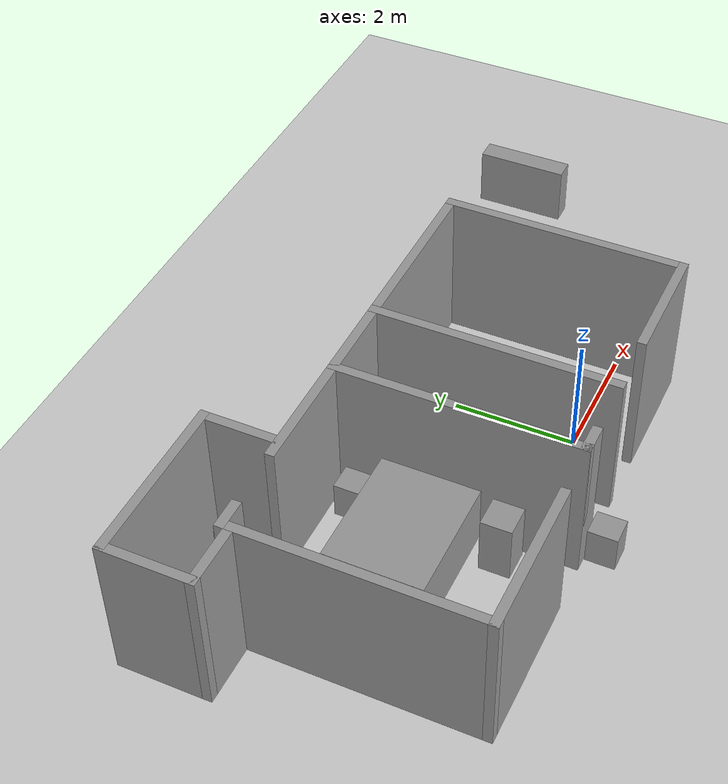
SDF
<sdf version="1.9">
 <world name="default">
  <model name="ground_plane">
   <static>true</static>
   <link name="link">
    <collision name="collision">
     <geometry><plane><normal>0 0 1</normal><size>100 100</size></plane></geometry>
     <surface><friction><ode><mu>100</mu><mu2>50</mu2></ode></friction></surface>
    </collision>
    <visual name="visual">
     <cast_shadows>false</cast_shadows>
     <geometry><plane><normal>0 0 1</normal><size>100 100</size></plane></geometry>
     <material>
      <script><uri>file://media/materials/scripts/gazebo.material</uri><name>Gazebo/Grey</name></script>
     </material>
    </visual>
   </link>
  </model>
  <model name="cma_escritorio">
   <pose>-1.8304 1.03024 0 0 0 0</pose>
   <link name="Wall_11">
    <collision name="Wall_11_Collision">
     <geometry><box><size>2 0.14999999999999999 2.5</size></box></geometry>
     <pose>0 0 1.25 0 0 0</pose>
    </collision>
    <visual name="Wall_11_Visual">
     <pose>0 0 1.25 0 0 0</pose>
     <geometry><box><size>2 0.14999999999999999 2.5</size></box></geometry>
     <material>
      <script><uri>file://media/materials/scripts/gazebo.material</uri><name>Gazebo/Grey</name></script>
      <ambient>1 1 1 1</ambient>
     </material>
    </visual>
    <pose>-1.3999999999999999 1.9299999999999999 0 0 0 3.1415899999999999</pose>
   </link>
   <link name="Wall_2">
    <collision name="Wall_2_Collision">
     <geometry><box><size>4 0.14999999999999999 2.5</size></box></geometry>
     <pose>0 0 1.25 0 0 0</pose>
    </collision>
    <visual name="Wall_2_Visual">
     <pose>0 0 1.25 0 0 0</pose>
     <geometry><box><size>4 0.14999999999999999 2.5</size></box></geometry>
     <material>
      <script><uri>file://media/materials/scripts/gazebo.material</uri><name>Gazebo/Grey</name></script>
      <ambient>1 1 1 1</ambient>
     </material>
    </visual>
    <pose>0.875 0.0050000000000000001 0 0 0 1.5708</pose>
   </link>
   <link name="Wall_25">
    <collision name="Wall_25_Collision">
     <geometry><box><size>2.5 0.14999999999999999 2.5</size></box></geometry>
     <pose>0 0 1.25 0 0 0</pose>
    </collision>
    <visual name="Wall_25_Visual">
     <pose>0 0 1.25 0 0 0</pose>
     <geometry><box><size>2.5 0.14999999999999999 2.5</size></box></geometry>
     <material>
      <script><uri>file://media/materials/scripts/gazebo.material</uri><name>Gazebo/Grey</name></script>
      <ambient>1 1 1 1</ambient>
     </material>
    </visual>
    <pose>-2.5499999999999998 -1.9299999999999999 0 0 0 3.1415899999999999</pose>
   </link>
   <link name="Wall_26">
    <collision name="Wall_26_Collision">
     <geometry><box><size>4 0.14999999999999999 2.5</size></box></geometry>
     <pose>0 0 1.25 0 0 0</pose>
    </collision>
    <visual name="Wall_26_Visual">
     <pose>0 0 1.25 0 0 0</pose>
     <geometry><box><size>4 0.14999999999999999 2.5</size></box></geometry>
     <material>
      <script><uri>file://media/materials/scripts/gazebo.material</uri><name>Gazebo/Grey</name></script>
      <ambient>1 1 1 1</ambient>
     </material>
    </visual>
    <pose>-3.7250000000000001 -0.0050000000000000001 0 0 0 1.5708</pose>
   </link>
   <link name="Wall_27">
    <collision name="Wall_27_Collision">
     <geometry><box><size>0.5 0.14999999999999999 2.5</size></box></geometry>
     <pose>0 0 1.25 0 0 0</pose>
    </collision>
    <visual name="Wall_27_Visual">
     <pose>0 0 1.25 0 0 0</pose>
     <geometry><box><size>0.5 0.14999999999999999 2.5</size></box></geometry>
     <material>
      <script><uri>file://media/materials/scripts/gazebo.material</uri><name>Gazebo/Grey</name></script>
      <ambient>1 1 1 1</ambient>
     </material>
    </visual>
    <pose>-3.5499999999999998 1.9199999999999999 0 0 0 0</pose>
   </link>
   <link name="Wall_3">
    <collision name="Wall_3_Collision">
     <geometry><box><size>3 0.14999999999999999 2.5</size></box></geometry>
     <pose>0 0 1.25 0 0 0</pose>
    </collision>
    <visual name="Wall_3_Visual">
     <pose>0 0 1.25 0 0 0</pose>
     <geometry><box><size>3 0.14999999999999999 2.5</size></box></geometry>
     <material>
      <script><uri>file://media/materials/scripts/gazebo.material</uri><name>Gazebo/Grey</name></script>
      <ambient>1 1 1 1</ambient>
     </material>
    </visual>
    <pose>2.2999999999999998 1.9299999999999999 0 0 0 0</pose>
   </link>
   <link name="Wall_4">
    <collision name="Wall_4_Collision">
     <geometry><box><size>4 0.14999999999999999 2.5</size></box></geometry>
     <pose>0 0 1.25 0 0 0</pose>
    </collision>
    <visual name="Wall_4_Visual">
     <pose>0 0 1.25 0 0 0</pose>
     <geometry><box><size>4 0.14999999999999999 2.5</size></box></geometry>
     <material>
      <script><uri>file://media/materials/scripts/gazebo.material</uri><name>Gazebo/Grey</name></script>
      <ambient>1 1 1 1</ambient>
     </material>
    </visual>
    <pose>3.7250000000000001 0.0050000000000000001 0 0 0 -1.5708</pose>
   </link>
   <link name="Wall_5">
    <collision name="Wall_5_Collision">
     <geometry><box><size>2 0.14999999999999999 2.5</size></box></geometry>
     <pose>0 0 1.25 0 0 0</pose>
    </collision>
    <visual name="Wall_5_Visual">
     <pose>0 0 1.25 0 0 0</pose>
     <geometry><box><size>2 0.14999999999999999 2.5</size></box></geometry>
     <material>
      <script><uri>file://media/materials/scripts/gazebo.material</uri><name>Gazebo/Grey</name></script>
      <ambient>1 1 1 1</ambient>
     </material>
    </visual>
    <pose>2.7999999999999998 -1.9199999999999999 0 0 0 3.1415899999999999</pose>
   </link>
   <link name="Wall_7">
    <collision name="Wall_7_Collision">
     <geometry><box><size>1.5 0.14999999999999999 2.5</size></box></geometry>
     <pose>0 0 1.25 0 0 0</pose>
    </collision>
    <visual name="Wall_7_Visual">
     <pose>0 0 1.25 0 0 0</pose>
     <geometry><box><size>1.5 0.14999999999999999 2.5</size></box></geometry>
     <material>
      <script><uri>file://media/materials/scripts/gazebo.material</uri><name>Gazebo/Grey</name></script>
      <ambient>1 1 1 1</ambient>
     </material>
    </visual>
    <pose>0.20000000000000001 1.9299999999999999 0 0 0 3.1415899999999999</pose>
   </link>
   <link name="Wall_8">
    <collision name="Wall_8_Collision">
     <geometry><box><size>4 0.14999999999999999 2.5</size></box></geometry>
     <pose>0 0 1.25 0 0 0</pose>
    </collision>
    <visual name="Wall_8_Visual">
     <pose>0 0 1.25 0 0 0</pose>
     <geometry><box><size>4 0.14999999999999999 2.5</size></box></geometry>
     <material>
      <script><uri>file://media/materials/scripts/gazebo.material</uri><name>Gazebo/Grey</name></script>
      <ambient>1 1 1 1</ambient>
     </material>
    </visual>
    <pose>-0.47499999999999998 0.0050000000000000001 0 0 0 -1.5708</pose>
   </link>
   <link name="Wall_9">
    <collision name="Wall_9_Collision">
     <geometry><box><size>0.5 0.14999999999999999 2.5</size></box></geometry>
     <pose>0 0 1.25 0 0 0</pose>
    </collision>
    <visual name="Wall_9_Visual">
     <pose>0 0 1.25 0 0 0</pose>
     <geometry><box><size>0.5 0.14999999999999999 2.5</size></box></geometry>
     <material>
      <script><uri>file://media/materials/scripts/gazebo.material</uri><name>Gazebo/Grey</name></script>
      <ambient>1 1 1 1</ambient>
     </material>
    </visual>
    <pose>-0.29999999999999999 -1.9199999999999999 0 0 0 0</pose>
   </link>
   <static>true</static>
  </model>
  <model name="cma_banheiro">
   <pose>-5.2292800000000002 3.4870999999999999 0 0 0 0</pose>
   <link name="Wall_0">
    <collision name="Wall_0_Collision">
     <geometry><box><size>1 0.14999999999999999 2.5</size></box></geometry>
     <pose>0 0 1.25 0 0 0</pose>
    </collision>
    <visual name="Wall_0_Visual">
     <pose>0 0 1.25 0 0 0</pose>
     <geometry><box><size>1 0.14999999999999999 2.5</size></box></geometry>
     <material>
      <script><uri>file://media/materials/scripts/gazebo.material</uri><name>Gazebo/Grey</name></script>
      <ambient>1 1 1 1</ambient>
     </material>
    </visual>
    <pose>-0.875 -0.67500000000000004 0 0 0 3.1415899999999999</pose>
   </link>
   <link name="Wall_1">
    <collision name="Wall_1_Collision">
     <geometry><box><size>1.5 0.14999999999999999 2.5</size></box></geometry>
     <pose>0 0 1.25 0 0 0</pose>
    </collision>
    <visual name="Wall_1_Visual">
     <pose>0 0 1.25 0 0 0</pose>
     <geometry><box><size>1.5 0.14999999999999999 2.5</size></box></geometry>
     <material>
      <script><uri>file://media/materials/scripts/gazebo.material</uri><name>Gazebo/Grey</name></script>
      <ambient>1 1 1 1</ambient>
     </material>
    </visual>
    <pose>-1.3 0 0 0 0 1.5708</pose>
   </link>
   <link name="Wall_2">
    <collision name="Wall_2_Collision">
     <geometry><box><size>2.75 0.14999999999999999 2.5</size></box></geometry>
     <pose>0 0 1.25 0 0 0</pose>
    </collision>
    <visual name="Wall_2_Visual">
     <pose>0 0 1.25 0 0 0</pose>
     <geometry><box><size>2.75 0.14999999999999999 2.5</size></box></geometry>
     <material>
      <script><uri>file://media/materials/scripts/gazebo.material</uri><name>Gazebo/Grey</name></script>
      <ambient>1 1 1 1</ambient>
     </material>
    </visual>
    <pose>0 0.67500000000000004 0 0 0 0</pose>
   </link>
   <link name="Wall_4">
    <collision name="Wall_4_Collision">
     <geometry><box><size>1.25 0.14999999999999999 2.5</size></box></geometry>
     <pose>0 0 1.25 0 0 0</pose>
    </collision>
    <visual name="Wall_4_Visual">
     <pose>0 0 1.25 0 0 0</pose>
     <geometry><box><size>1.25 0.14999999999999999 2.5</size></box></geometry>
     <material>
      <script><uri>file://media/materials/scripts/gazebo.material</uri><name>Gazebo/Grey</name></script>
      <ambient>1 1 1 1</ambient>
     </material>
    </visual>
    <pose>1.3 0.125 0 0 0 -1.5708</pose>
   </link>
   <static>true</static>
  </model>
  <model name="cma_lixo_0">
   <link name="link_1">
    <pose>0.88296200000000002 1.81586 0.5 0 0 0</pose>
    <inertial>
     <mass>0.068764400000000003</mass>
     <inertia>
      <ixx>0.00602588</ixx>
      <ixy>0</ixy>
      <ixz>0</ixz>
      <iyy>0.00602588</iyy>
      <iyz>0</iyz>
      <izz>0.00059106800000000004</izz>
     </inertia>
    </inertial>
    <visual name="visual">
     <geometry><cylinder><radius>0.13111200000000001</radius><length>1</length></cylinder></geometry>
     <material>
      <lighting>true</lighting>
      <script><uri>file://media/materials/scripts/gazebo.material</uri><name>Gazebo/Grey</name></script>
      <ambient>0.300000012 0.300000012 0.300000012 1</ambient>
      <diffuse>0.699999988 0.699999988 0.699999988 1</diffuse>
      <specular>0.00999999978 0.00999999978 0.00999999978 1</specular>
      <emissive>0 0 0 1</emissive>
     </material>
    </visual>
    <collision name="collision">
     <geometry><cylinder><radius>0.13111200000000001</radius><length>1</length></cylinder></geometry>
     <surface>
      <friction>
       <ode><mu>1</mu><mu2>1</mu2><fdir1>0 0 0</fdir1><slip1>0</slip1><slip2>0</slip2></ode>
       <torsional>
        <coefficient>1</coefficient>
        <patch_radius>0</patch_radius>
        <surface_radius>0</surface_radius>
        <use_patch_radius>true</use_patch_radius>
        <ode><slip>0</slip></ode>
       </torsional>
      </friction>
      <bounce><restitution_coefficient>0</restitution_coefficient><threshold>1000000</threshold></bounce>
      <contact>
       <collide_without_contact>false</collide_without_contact>
       <collide_without_contact_bitmask>1</collide_without_contact_bitmask>
       <collide_bitmask>1</collide_bitmask>
       <ode>
        <soft_cfm>0</soft_cfm>
        <soft_erp>0.20000000000000001</soft_erp>
        <kp>10000000000000</kp>
        <kd>1</kd>
        <max_vel>0.01</max_vel>
        <min_depth>0</min_depth>
       </ode>
       <bullet>
        <split_impulse>true</split_impulse>
        <split_impulse_penetration_threshold>-0.01</split_impulse_penetration_threshold>
        <soft_cfm>0</soft_cfm>
        <soft_erp>0.20000000000000001</soft_erp>
        <kp>10000000000000</kp>
        <kd>1</kd>
       </bullet>
      </contact>
     </surface>
    </collision>
   </link>
   <static>false</static>
   <pose>-1.6093500000000001 -0.44273099999999999 -7.9999999999999996e-06 0 0 -0.0097769999999999992</pose>
  </model>
  <model name="cma_bau_s">
   <link name="link_1">
    <pose>0.109594 0.27229300000000001 0 0 0 0</pose>
    <inertial>
     <mass>0.12547900000000001</mass>
     <inertia>
      <ixx>0.0064194300000000003</ixx>
      <ixy>0</ixy>
      <ixz>0</ixz>
      <iyy>0.0059753999999999996</iyy>
      <iyz>0</iyz>
      <izz>0.0042208499999999999</izz>
     </inertia>
    </inertial>
    <visual name="visual">
     <geometry><box><size>0.42496400000000001 0.47228300000000001 0.62511799999999995</size></box></geometry>
     <material>
      <lighting>true</lighting>
      <script><uri>file://media/materials/scripts/gazebo.material</uri><name>Gazebo/Grey</name></script>
      <ambient>0.300000012 0.300000012 0.300000012 1</ambient>
      <diffuse>0.699999988 0.699999988 0.699999988 1</diffuse>
      <specular>0.00999999978 0.00999999978 0.00999999978 1</specular>
      <emissive>0 0 0 1</emissive>
     </material>
    </visual>
    <collision name="collision">
     <geometry><box><size>0.42496400000000001 0.47228300000000001 0.62511799999999995</size></box></geometry>
     <surface>
      <friction>
       <ode><mu>1</mu><mu2>1</mu2><fdir1>0 0 0</fdir1><slip1>0</slip1><slip2>0</slip2></ode>
       <torsional>
        <coefficient>1</coefficient>
        <patch_radius>0</patch_radius>
        <surface_radius>0</surface_radius>
        <use_patch_radius>true</use_patch_radius>
        <ode><slip>0</slip></ode>
       </torsional>
      </friction>
      <bounce><restitution_coefficient>0</restitution_coefficient><threshold>1000000</threshold></bounce>
      <contact>
       <collide_without_contact>false</collide_without_contact>
       <collide_without_contact_bitmask>1</collide_without_contact_bitmask>
       <collide_bitmask>1</collide_bitmask>
       <ode>
        <soft_cfm>0</soft_cfm>
        <soft_erp>0.20000000000000001</soft_erp>
        <kp>10000000000000</kp>
        <kd>1</kd>
        <max_vel>0.01</max_vel>
        <min_depth>0</min_depth>
       </ode>
       <bullet>
        <split_impulse>true</split_impulse>
        <split_impulse_penetration_threshold>-0.01</split_impulse_penetration_threshold>
        <soft_cfm>0</soft_cfm>
        <soft_erp>0.20000000000000001</soft_erp>
        <kp>10000000000000</kp>
        <kd>1</kd>
       </bullet>
      </contact>
     </surface>
    </collision>
   </link>
   <static>false</static>
   <pose>-2.0427499999999998 -1.4857199999999999 0.31255899999999998 3.0000000000000001e-06 0 0.00079600000000000005</pose>
  </model>
  <model name="cma_cama_c_0">
   <link name="link_0">
    <pose>5.0000000000000004e-06 -3.9999999999999998e-06 0 0 0 0</pose>
    <inertial>
     <mass>3.1835800000000001</mass>
     <inertia>
      <ixx>0.93486199999999997</ixx>
      <ixy>0</ixy>
      <ixz>0</ixz>
      <iyy>1.3306899999999999</iyy>
      <iyz>0</iyz>
      <izz>1.7349600000000001</izz>
     </inertia>
    </inertial>
    <visual name="visual">
     <geometry><box><size>2.0039400000000001 1.58866 1</size></box></geometry>
     <material>
      <lighting>true</lighting>
      <script><uri>file://media/materials/scripts/gazebo.material</uri><name>Gazebo/Grey</name></script>
      <ambient>0.300000012 0.300000012 0.300000012 1</ambient>
      <diffuse>0.699999988 0.699999988 0.699999988 1</diffuse>
      <specular>0.00999999978 0.00999999978 0.00999999978 1</specular>
      <emissive>0 0 0 1</emissive>
     </material>
    </visual>
    <collision name="collision">
     <geometry><box><size>2.0039400000000001 1.58866 1</size></box></geometry>
     <surface>
      <friction>
       <ode><mu>1</mu><mu2>1</mu2><fdir1>0 0 0</fdir1><slip1>0</slip1><slip2>0</slip2></ode>
       <torsional>
        <coefficient>1</coefficient>
        <patch_radius>0</patch_radius>
        <surface_radius>0</surface_radius>
        <use_patch_radius>true</use_patch_radius>
        <ode><slip>0</slip></ode>
       </torsional>
      </friction>
      <bounce><restitution_coefficient>0</restitution_coefficient><threshold>1000000</threshold></bounce>
      <contact>
       <collide_without_contact>false</collide_without_contact>
       <collide_without_contact_bitmask>1</collide_without_contact_bitmask>
       <collide_bitmask>1</collide_bitmask>
       <ode>
        <soft_cfm>0</soft_cfm>
        <soft_erp>0.20000000000000001</soft_erp>
        <kp>10000000000000</kp>
        <kd>1</kd>
        <max_vel>0.01</max_vel>
        <min_depth>0</min_depth>
       </ode>
       <bullet>
        <split_impulse>true</split_impulse>
        <split_impulse_penetration_threshold>-0.01</split_impulse_penetration_threshold>
        <soft_cfm>0</soft_cfm>
        <soft_erp>0.20000000000000001</soft_erp>
        <kp>10000000000000</kp>
        <kd>1</kd>
       </bullet>
      </contact>
     </surface>
    </collision>
   </link>
   <static>false</static>
   <pose>-3.3823799999999999 1.3878699999999999 0.5 0 0 -2.0000000000000003e-06</pose>
  </model>
  <model name="cma_bau_s_0">
   <link name="link_1">
    <pose>0.109594 0.27229300000000001 0 0 0 0</pose>
    <inertial>
     <mass>0.12547900000000001</mass>
     <inertia>
      <ixx>0.0064194300000000003</ixx>
      <ixy>0</ixy>
      <ixz>0</ixz>
      <iyy>0.0059753999999999996</iyy>
      <iyz>0</iyz>
      <izz>0.0042208499999999999</izz>
     </inertia>
    </inertial>
    <visual name="visual">
     <geometry><box><size>0.42496400000000001 0.47228300000000001 0.62511799999999995</size></box></geometry>
     <material>
      <lighting>true</lighting>
      <script><uri>file://media/materials/scripts/gazebo.material</uri><name>Gazebo/Grey</name></script>
      <ambient>0.300000012 0.300000012 0.300000012 1</ambient>
      <diffuse>0.699999988 0.699999988 0.699999988 1</diffuse>
      <specular>0.00999999978 0.00999999978 0.00999999978 1</specular>
      <emissive>0 0 0 1</emissive>
     </material>
    </visual>
    <collision name="collision">
     <geometry><box><size>0.42496400000000001 0.47228300000000001 0.62511799999999995</size></box></geometry>
     <surface>
      <friction>
       <ode><mu>1</mu><mu2>1</mu2><fdir1>0 0 0</fdir1><slip1>0</slip1><slip2>0</slip2></ode>
       <torsional>
        <coefficient>1</coefficient>
        <patch_radius>0</patch_radius>
        <surface_radius>0</surface_radius>
        <use_patch_radius>true</use_patch_radius>
        <ode><slip>0</slip></ode>
       </torsional>
      </friction>
      <bounce><restitution_coefficient>0</restitution_coefficient><threshold>1000000</threshold></bounce>
      <contact>
       <collide_without_contact>false</collide_without_contact>
       <collide_without_contact_bitmask>1</collide_without_contact_bitmask>
       <collide_bitmask>1</collide_bitmask>
       <ode>
        <soft_cfm>0</soft_cfm>
        <soft_erp>0.20000000000000001</soft_erp>
        <kp>10000000000000</kp>
        <kd>1</kd>
        <max_vel>0.01</max_vel>
        <min_depth>0</min_depth>
       </ode>
       <bullet>
        <split_impulse>true</split_impulse>
        <split_impulse_penetration_threshold>-0.01</split_impulse_penetration_threshold>
        <soft_cfm>0</soft_cfm>
        <soft_erp>0.20000000000000001</soft_erp>
        <kp>10000000000000</kp>
        <kd>1</kd>
       </bullet>
      </contact>
     </surface>
    </collision>
   </link>
   <static>false</static>
   <pose>-2.7653500000000002 2.2429000000000001 0.31255899999999998 3.0000000000000001e-06 0 -0.00091399999999999999</pose>
  </model>
  <model name="cma_gaveteiro_1">
   <link name="link_0">
    <pose>0 3.9999999999999998e-06 0 0 0 0</pose>
    <inertial>
     <mass>0.245086</mass>
     <inertia>
      <ixx>0.025418</ixx>
      <ixy>0</ixy>
      <ixz>0</ixz>
      <iyy>0.025441100000000001</iyy>
      <iyz>0</iyz>
      <izz>0.010011300000000001</izz>
     </inertia>
    </inertial>
    <visual name="visual">
     <geometry><box><size>0.49565700000000001 0.49449100000000001 1</size></box></geometry>
     <material>
      <lighting>true</lighting>
      <script><uri>file://media/materials/scripts/gazebo.material</uri><name>Gazebo/Grey</name></script>
      <ambient>0.300000012 0.300000012 0.300000012 1</ambient>
      <diffuse>0.699999988 0.699999988 0.699999988 1</diffuse>
      <specular>0.00999999978 0.00999999978 0.00999999978 1</specular>
      <emissive>0 0 0 1</emissive>
     </material>
    </visual>
    <collision name="collision">
     <geometry><box><size>0.49565700000000001 0.49449100000000001 1</size></box></geometry>
     <surface>
      <friction>
       <ode><mu>1</mu><mu2>1</mu2><fdir1>0 0 0</fdir1><slip1>0</slip1><slip2>0</slip2></ode>
       <torsional>
        <coefficient>1</coefficient>
        <patch_radius>0</patch_radius>
        <surface_radius>0</surface_radius>
        <use_patch_radius>true</use_patch_radius>
        <ode><slip>0</slip></ode>
       </torsional>
      </friction>
      <bounce><restitution_coefficient>0</restitution_coefficient><threshold>1000000</threshold></bounce>
      <contact>
       <collide_without_contact>false</collide_without_contact>
       <collide_without_contact_bitmask>1</collide_without_contact_bitmask>
       <collide_bitmask>1</collide_bitmask>
       <ode>
        <soft_cfm>0</soft_cfm>
        <soft_erp>0.20000000000000001</soft_erp>
        <kp>10000000000000</kp>
        <kd>1</kd>
        <max_vel>0.01</max_vel>
        <min_depth>0</min_depth>
       </ode>
       <bullet>
        <split_impulse>true</split_impulse>
        <split_impulse_penetration_threshold>-0.01</split_impulse_penetration_threshold>
        <soft_cfm>0</soft_cfm>
        <soft_erp>0.20000000000000001</soft_erp>
        <kp>10000000000000</kp>
        <kd>1</kd>
       </bullet>
      </contact>
     </surface>
    </collision>
   </link>
   <static>false</static>
   <pose>-2.68858 0.131637 0.49999700000000002 6.0000000000000002e-06 -6.000000000000001e-06 -0.00069800000000000005</pose>
  </model>
  <model name="cma_armario_6">
   <link name="link_0">
    <pose>1.3215699999999999 0.88517800000000002 0.5 0 0 0</pose>
    <inertial>
     <mass>0.40237600000000001</mass>
     <inertia>
      <ixx>0.0353686</ixx>
      <ixy>0</ixy>
      <ixz>0</ixz>
      <iyy>0.13261600000000001</iyy>
      <iyz>0</iyz>
      <izz>0.100922</izz>
     </inertia>
    </inertial>
    <visual name="visual">
     <geometry><box><size>1.7187699999999999 0.234069 1</size></box></geometry>
     <material>
      <lighting>true</lighting>
      <script><uri>file://media/materials/scripts/gazebo.material</uri><name>Gazebo/Grey</name></script>
      <ambient>0.300000012 0.300000012 0.300000012 1</ambient>
      <diffuse>0.699999988 0.699999988 0.699999988 1</diffuse>
      <specular>0.00999999978 0.00999999978 0.00999999978 1</specular>
      <emissive>0 0 0 1</emissive>
     </material>
    </visual>
    <collision name="collision">
     <geometry><box><size>1.7187699999999999 0.234069 1</size></box></geometry>
     <surface>
      <friction>
       <ode><mu>1</mu><mu2>1</mu2><fdir1>0 0 0</fdir1><slip1>0</slip1><slip2>0</slip2></ode>
       <torsional>
        <coefficient>1</coefficient>
        <patch_radius>0</patch_radius>
        <surface_radius>0</surface_radius>
        <use_patch_radius>true</use_patch_radius>
        <ode><slip>0</slip></ode>
       </torsional>
      </friction>
      <bounce><restitution_coefficient>0</restitution_coefficient><threshold>1000000</threshold></bounce>
      <contact>
       <collide_without_contact>false</collide_without_contact>
       <collide_without_contact_bitmask>1</collide_without_contact_bitmask>
       <collide_bitmask>1</collide_bitmask>
       <ode>
        <soft_cfm>0</soft_cfm>
        <soft_erp>0.20000000000000001</soft_erp>
        <kp>10000000000000</kp>
        <kd>1</kd>
        <max_vel>0.01</max_vel>
        <min_depth>0</min_depth>
       </ode>
       <bullet>
        <split_impulse>true</split_impulse>
        <split_impulse_penetration_threshold>-0.01</split_impulse_penetration_threshold>
        <soft_cfm>0</soft_cfm>
        <soft_erp>0.20000000000000001</soft_erp>
        <kp>10000000000000</kp>
        <kd>1</kd>
       </bullet>
      </contact>
     </surface>
    </collision>
   </link>
   <static>false</static>
   <pose>-4.3864400000000003 0.68721699999999997 1.9999999999999999e-06 -1.9999999999999999e-06 0 1.5653900000000001</pose>
  </model>
  <model name="cma_armario_7">
   <link name="link_0">
    <pose>1.3215699999999999 0.88517800000000002 0.5 0 0 0</pose>
    <inertial>
     <mass>0.40237600000000001</mass>
     <inertia>
      <ixx>0.0353686</ixx>
      <ixy>0</ixy>
      <ixz>0</ixz>
      <iyy>0.13261600000000001</iyy>
      <iyz>0</iyz>
      <izz>0.100922</izz>
     </inertia>
    </inertial>
    <visual name="visual">
     <geometry><box><size>1.7187699999999999 0.234069 1</size></box></geometry>
     <material>
      <lighting>true</lighting>
      <script><uri>file://media/materials/scripts/gazebo.material</uri><name>Gazebo/Grey</name></script>
      <ambient>0.300000012 0.300000012 0.300000012 1</ambient>
      <diffuse>0.699999988 0.699999988 0.699999988 1</diffuse>
      <specular>0.00999999978 0.00999999978 0.00999999978 1</specular>
      <emissive>0 0 0 1</emissive>
     </material>
    </visual>
    <collision name="collision">
     <geometry><box><size>1.7187699999999999 0.234069 1</size></box></geometry>
     <surface>
      <friction>
       <ode><mu>1</mu><mu2>1</mu2><fdir1>0 0 0</fdir1><slip1>0</slip1><slip2>0</slip2></ode>
       <torsional>
        <coefficient>1</coefficient>
        <patch_radius>0</patch_radius>
        <surface_radius>0</surface_radius>
        <use_patch_radius>true</use_patch_radius>
        <ode><slip>0</slip></ode>
       </torsional>
      </friction>
      <bounce><restitution_coefficient>0</restitution_coefficient><threshold>1000000</threshold></bounce>
      <contact>
       <collide_without_contact>false</collide_without_contact>
       <collide_without_contact_bitmask>1</collide_without_contact_bitmask>
       <collide_bitmask>1</collide_bitmask>
       <ode>
        <soft_cfm>0</soft_cfm>
        <soft_erp>0.20000000000000001</soft_erp>
        <kp>10000000000000</kp>
        <kd>1</kd>
        <max_vel>0.01</max_vel>
        <min_depth>0</min_depth>
       </ode>
       <bullet>
        <split_impulse>true</split_impulse>
        <split_impulse_penetration_threshold>-0.01</split_impulse_penetration_threshold>
        <soft_cfm>0</soft_cfm>
        <soft_erp>0.20000000000000001</soft_erp>
        <kp>10000000000000</kp>
        <kd>1</kd>
       </bullet>
      </contact>
     </surface>
    </collision>
   </link>
   <static>false</static>
   <pose>-4.3859199999999996 -1.0662700000000001 1.9999999999999999e-06 -2.0000000000000003e-06 -2.1175823681357508e-22 1.5676399999999999</pose>
  </model>
  <model name="cma_armario_coz_150x20cm">
   <link name="link_1">
    <pose>7.1868600000000002 2.7524700000000002 0.5 0 0 0</pose>
    <inertial>
     <mass>0.53157299999999996</mass>
     <inertia>
      <ixx>0.147651</ixx>
      <ixy>0</ixy>
      <ixz>0</ixz>
      <iyy>0.0496628</iyy>
      <iyz>0</iyz>
      <izz>0.108718</izz>
     </inertia>
    </inertial>
    <visual name="visual">
     <geometry><box><size>0.34802300000000003 1.52746 1</size></box></geometry>
     <material>
      <lighting>true</lighting>
      <script><uri>file://media/materials/scripts/gazebo.material</uri><name>Gazebo/Grey</name></script>
      <ambient>0.300000012 0.300000012 0.300000012 1</ambient>
      <diffuse>0.699999988 0.699999988 0.699999988 1</diffuse>
      <specular>0.00999999978 0.00999999978 0.00999999978 1</specular>
      <emissive>0 0 0 1</emissive>
     </material>
    </visual>
    <collision name="collision">
     <geometry><box><size>0.34802300000000003 1.52746 1</size></box></geometry>
     <surface>
      <friction>
       <ode><mu>1</mu><mu2>1</mu2><fdir1>0 0 0</fdir1><slip1>0</slip1><slip2>0</slip2></ode>
       <torsional>
        <coefficient>1</coefficient>
        <patch_radius>0</patch_radius>
        <surface_radius>0</surface_radius>
        <use_patch_radius>true</use_patch_radius>
        <ode><slip>0</slip></ode>
       </torsional>
      </friction>
      <bounce><restitution_coefficient>0</restitution_coefficient><threshold>1000000</threshold></bounce>
      <contact>
       <collide_without_contact>false</collide_without_contact>
       <collide_without_contact_bitmask>1</collide_without_contact_bitmask>
       <collide_bitmask>1</collide_bitmask>
       <ode>
        <soft_cfm>0</soft_cfm>
        <soft_erp>0.20000000000000001</soft_erp>
        <kp>10000000000000</kp>
        <kd>1</kd>
        <max_vel>0.01</max_vel>
        <min_depth>0</min_depth>
       </ode>
       <bullet>
        <split_impulse>true</split_impulse>
        <split_impulse_penetration_threshold>-0.01</split_impulse_penetration_threshold>
        <soft_cfm>0</soft_cfm>
        <soft_erp>0.20000000000000001</soft_erp>
        <kp>10000000000000</kp>
        <kd>1</kd>
       </bullet>
      </contact>
     </surface>
    </collision>
   </link>
   <static>false</static>
   <pose>-1.7943199999999999 0.26476100000000002 -3.6999999999999998e-05 0 -5.0000000000000013e-06 0</pose>
  </model>
  <model name="cma_bans_a1">
   <link name="link_0">
    <pose>-9.9999999999999995e-07 0 0 0 0 0</pose>
    <inertial>
     <mass>0.42531200000000002</mass>
     <inertia>
      <ixx>0.116443</ixx>
      <ixy>0</ixy>
      <ixz>0</ixz>
      <iyy>0.029397199999999998</iyy>
      <iyz>0</iyz>
      <izz>0.093901600000000002</izz>
     </inertia>
    </inertial>
    <visual name="visual">
     <geometry><box><size>0.31099700000000002 1.59771 0.85598300000000005</size></box></geometry>
     <material>
      <lighting>true</lighting>
      <script><uri>file://media/materials/scripts/gazebo.material</uri><name>Gazebo/Grey</name></script>
      <ambient>0.300000012 0.300000012 0.300000012 1</ambient>
      <diffuse>0.699999988 0.699999988 0.699999988 1</diffuse>
      <specular>0.00999999978 0.00999999978 0.00999999978 1</specular>
      <emissive>0 0 0 1</emissive>
     </material>
    </visual>
    <collision name="collision">
     <geometry><box><size>0.31099700000000002 1.59771 0.85598300000000005</size></box></geometry>
     <surface>
      <friction>
       <ode><mu>1</mu><mu2>1</mu2><fdir1>0 0 0</fdir1><slip1>0</slip1><slip2>0</slip2></ode>
       <torsional>
        <coefficient>1</coefficient>
        <patch_radius>0</patch_radius>
        <surface_radius>0</surface_radius>
        <use_patch_radius>true</use_patch_radius>
        <ode><slip>0</slip></ode>
       </torsional>
      </friction>
      <bounce><restitution_coefficient>0</restitution_coefficient><threshold>1000000</threshold></bounce>
      <contact>
       <collide_without_contact>false</collide_without_contact>
       <collide_without_contact_bitmask>1</collide_without_contact_bitmask>
       <collide_bitmask>1</collide_bitmask>
       <ode>
        <soft_cfm>0</soft_cfm>
        <soft_erp>0.20000000000000001</soft_erp>
        <kp>10000000000000</kp>
        <kd>1</kd>
        <max_vel>0.01</max_vel>
        <min_depth>0</min_depth>
       </ode>
       <bullet>
        <split_impulse>true</split_impulse>
        <split_impulse_penetration_threshold>-0.01</split_impulse_penetration_threshold>
        <soft_cfm>0</soft_cfm>
        <soft_erp>0.20000000000000001</soft_erp>
        <kp>10000000000000</kp>
        <kd>1</kd>
       </bullet>
      </contact>
     </surface>
    </collision>
   </link>
   <static>false</static>
   <pose>-1.9577199999999999 0.037842000000000001 0.42799199999999998 0 2.0000000000000003e-06 0</pose>
  </model>
  <model name="cma_bans_b">
   <link name="link_1">
    <pose>-1.9999999999999999e-06 3.9999999999999998e-06 0 0 0 0</pose>
    <inertial>
     <mass>0.082122799999999996</mass>
     <inertia>
      <ixx>0.00118272</ixx>
      <ixy>0</ixy>
      <ixz>0</ixz>
      <iyy>0.0076189099999999996</iyy>
      <iyz>0</iyz>
      <izz>0.0072509599999999999</izz>
     </inertia>
    </inertial>
    <visual name="visual">
     <geometry><box><size>1 0.24398400000000001 0.33659099999999997</size></box></geometry>
     <material>
      <lighting>true</lighting>
      <script><uri>file://media/materials/scripts/gazebo.material</uri><name>Gazebo/Grey</name></script>
      <ambient>0.300000012 0.300000012 0.300000012 1</ambient>
      <diffuse>0.699999988 0.699999988 0.699999988 1</diffuse>
      <specular>0.00999999978 0.00999999978 0.00999999978 1</specular>
      <emissive>0 0 0 1</emissive>
     </material>
    </visual>
    <collision name="collision">
     <geometry><box><size>1 0.24398400000000001 0.33659099999999997</size></box></geometry>
     <surface>
      <friction>
       <ode><mu>1</mu><mu2>1</mu2><fdir1>0 0 0</fdir1><slip1>0</slip1><slip2>0</slip2></ode>
       <torsional>
        <coefficient>1</coefficient>
        <patch_radius>0</patch_radius>
        <surface_radius>0</surface_radius>
        <use_patch_radius>true</use_patch_radius>
        <ode><slip>0</slip></ode>
       </torsional>
      </friction>
      <bounce><restitution_coefficient>0</restitution_coefficient><threshold>1000000</threshold></bounce>
      <contact>
       <collide_without_contact>false</collide_without_contact>
       <collide_without_contact_bitmask>1</collide_without_contact_bitmask>
       <collide_bitmask>1</collide_bitmask>
       <ode>
        <soft_cfm>0</soft_cfm>
        <soft_erp>0.20000000000000001</soft_erp>
        <kp>10000000000000</kp>
        <kd>1</kd>
        <max_vel>0.01</max_vel>
        <min_depth>0</min_depth>
       </ode>
       <bullet>
        <split_impulse>true</split_impulse>
        <split_impulse_penetration_threshold>-0.01</split_impulse_penetration_threshold>
        <soft_cfm>0</soft_cfm>
        <soft_erp>0.20000000000000001</soft_erp>
        <kp>10000000000000</kp>
        <kd>1</kd>
       </bullet>
      </contact>
     </surface>
    </collision>
   </link>
   <static>false</static>
   <pose>-1.59754 2.0649600000000001 0.168296 0 0 0</pose>
  </model>
  <model name="cma_bans_v">
   <link name="link_2">
    <pose>3.0000000000000001e-06 -3.9999999999999998e-06 0 0 0 0</pose>
    <inertial>
     <mass>0.051888999999999998</mass>
     <inertia>
      <ixx>0.0020361099999999998</ixx>
      <ixy>0</ixy>
      <ixz>0</ixz>
      <iyy>0.0020361099999999998</iyy>
      <iyz>0</iyz>
      <izz>0.00052554800000000003</izz>
     </inertia>
    </inertial>
    <visual name="visual">
     <geometry>
      <cylinder><radius>0.14232900000000001</radius><length>0.64039599999999997</length></cylinder>
     </geometry>
     <material>
      <lighting>true</lighting>
      <script><uri>file://media/materials/scripts/gazebo.material</uri><name>Gazebo/Grey</name></script>
      <ambient>0.300000012 0.300000012 0.300000012 1</ambient>
      <diffuse>0.699999988 0.699999988 0.699999988 1</diffuse>
      <specular>0.00999999978 0.00999999978 0.00999999978 1</specular>
      <emissive>0 0 0 1</emissive>
     </material>
    </visual>
    <collision name="collision">
     <geometry>
      <cylinder><radius>0.14232900000000001</radius><length>0.64039599999999997</length></cylinder>
     </geometry>
     <surface>
      <friction>
       <ode><mu>1</mu><mu2>1</mu2><fdir1>0 0 0</fdir1><slip1>0</slip1><slip2>0</slip2></ode>
       <torsional>
        <coefficient>1</coefficient>
        <patch_radius>0</patch_radius>
        <surface_radius>0</surface_radius>
        <use_patch_radius>true</use_patch_radius>
        <ode><slip>0</slip></ode>
       </torsional>
      </friction>
      <bounce><restitution_coefficient>0</restitution_coefficient><threshold>1000000</threshold></bounce>
      <contact>
       <collide_without_contact>false</collide_without_contact>
       <collide_without_contact_bitmask>1</collide_without_contact_bitmask>
       <collide_bitmask>1</collide_bitmask>
       <ode>
        <soft_cfm>0</soft_cfm>
        <soft_erp>0.20000000000000001</soft_erp>
        <kp>10000000000000</kp>
        <kd>1</kd>
        <max_vel>0.01</max_vel>
        <min_depth>0</min_depth>
       </ode>
       <bullet>
        <split_impulse>true</split_impulse>
        <split_impulse_penetration_threshold>-0.01</split_impulse_penetration_threshold>
        <soft_cfm>0</soft_cfm>
        <soft_erp>0.20000000000000001</soft_erp>
        <kp>10000000000000</kp>
        <kd>1</kd>
       </bullet>
      </contact>
     </surface>
    </collision>
   </link>
   <static>false</static>
   <pose>-1.9751099999999999 1.6173200000000001 0.320189 0 0 0</pose>
  </model>
  <model name="cma_banr_a1">
   <link name="link_0">
    <pose>9.9999999999999995e-07 -3.0000000000000001e-06 0 0 0 0</pose>
    <inertial>
     <mass>0.105007</mass>
     <inertia>
      <ixx>0.0095579099999999993</ixx>
      <ixy>0</ixy>
      <ixz>0</ixz>
      <iyy>0.00253403</iyy>
      <iyz>0</iyz>
      <izz>0.0079823299999999993</izz>
     </inertia>
    </inertial>
    <visual name="visual">
     <geometry><box><size>0.234016 0.92597799999999997 0.48457699999999998</size></box></geometry>
     <material>
      <lighting>true</lighting>
      <script><uri>file://media/materials/scripts/gazebo.material</uri><name>Gazebo/Grey</name></script>
      <ambient>0.300000012 0.300000012 0.300000012 1</ambient>
      <diffuse>0.699999988 0.699999988 0.699999988 1</diffuse>
      <specular>0.00999999978 0.00999999978 0.00999999978 1</specular>
      <emissive>0 0 0 1</emissive>
     </material>
    </visual>
    <collision name="collision">
     <geometry><box><size>0.234016 0.92597799999999997 0.48457699999999998</size></box></geometry>
     <surface>
      <friction>
       <ode><mu>1</mu><mu2>1</mu2><fdir1>0 0 0</fdir1><slip1>0</slip1><slip2>0</slip2></ode>
       <torsional>
        <coefficient>1</coefficient>
        <patch_radius>0</patch_radius>
        <surface_radius>0</surface_radius>
        <use_patch_radius>true</use_patch_radius>
        <ode><slip>0</slip></ode>
       </torsional>
      </friction>
      <bounce><restitution_coefficient>0</restitution_coefficient><threshold>1000000</threshold></bounce>
      <contact>
       <collide_without_contact>false</collide_without_contact>
       <collide_without_contact_bitmask>1</collide_without_contact_bitmask>
       <collide_bitmask>1</collide_bitmask>
       <ode>
        <soft_cfm>0</soft_cfm>
        <soft_erp>0.20000000000000001</soft_erp>
        <kp>10000000000000</kp>
        <kd>1</kd>
        <max_vel>0.01</max_vel>
        <min_depth>0</min_depth>
       </ode>
       <bullet>
        <split_impulse>true</split_impulse>
        <split_impulse_penetration_threshold>-0.01</split_impulse_penetration_threshold>
        <soft_cfm>0</soft_cfm>
        <soft_erp>0.20000000000000001</soft_erp>
        <kp>10000000000000</kp>
        <kd>1</kd>
       </bullet>
      </contact>
     </surface>
    </collision>
   </link>
   <static>false</static>
   <pose>-4.1758899999999999 3.52745 0.24228 2.5849394142915424e-26 6.9999999999999999e-06 4.7999999999999994e-05</pose>
  </model>
  <model name="cma_banr_v">
   <link name="link_1">
    <pose>9.9999999999999995e-07 0 0 0 0 0</pose>
    <inertial>
     <mass>0.067197000000000007</mass>
     <inertia>
      <ixx>0.0023247699999999999</ixx>
      <ixy>0</ixy>
      <ixz>0</ixz>
      <iyy>0.0023247699999999999</iyy>
      <iyz>0</iyz>
      <izz>0.000986998</izz>
     </inertia>
    </inertial>
    <visual name="visual">
     <geometry>
      <cylinder><radius>0.17139299999999999</radius><length>0.57186099999999995</length></cylinder>
     </geometry>
     <material>
      <lighting>true</lighting>
      <script><uri>file://media/materials/scripts/gazebo.material</uri><name>Gazebo/Grey</name></script>
      <ambient>0.300000012 0.300000012 0.300000012 1</ambient>
      <diffuse>0.699999988 0.699999988 0.699999988 1</diffuse>
      <specular>0.00999999978 0.00999999978 0.00999999978 1</specular>
      <emissive>0 0 0 1</emissive>
     </material>
    </visual>
    <collision name="collision">
     <geometry>
      <cylinder><radius>0.17139299999999999</radius><length>0.57186099999999995</length></cylinder>
     </geometry>
     <surface>
      <friction>
       <ode><mu>1</mu><mu2>1</mu2><fdir1>0 0 0</fdir1><slip1>0</slip1><slip2>0</slip2></ode>
       <torsional>
        <coefficient>1</coefficient>
        <patch_radius>0</patch_radius>
        <surface_radius>0</surface_radius>
        <use_patch_radius>true</use_patch_radius>
        <ode><slip>0</slip></ode>
       </torsional>
      </friction>
      <bounce><restitution_coefficient>0</restitution_coefficient><threshold>1000000</threshold></bounce>
      <contact>
       <collide_without_contact>false</collide_without_contact>
       <collide_without_contact_bitmask>1</collide_without_contact_bitmask>
       <collide_bitmask>1</collide_bitmask>
       <ode>
        <soft_cfm>0</soft_cfm>
        <soft_erp>0.20000000000000001</soft_erp>
        <kp>10000000000000</kp>
        <kd>1</kd>
        <max_vel>0.01</max_vel>
        <min_depth>0</min_depth>
       </ode>
       <bullet>
        <split_impulse>true</split_impulse>
        <split_impulse_penetration_threshold>-0.01</split_impulse_penetration_threshold>
        <soft_cfm>0</soft_cfm>
        <soft_erp>0.20000000000000001</soft_erp>
        <kp>10000000000000</kp>
        <kd>1</kd>
       </bullet>
      </contact>
     </surface>
    </collision>
   </link>
   <static>false</static>
   <pose>-5.3983600000000003 3.8373699999999999 0.28592099999999998 0 0 0</pose>
  </model>
  <model name="cma_banr_b">
   <link name="link_2">
    <pose>3.0000000000000001e-06 -3.9999999999999998e-06 0 0 0 0</pose>
    <inertial>
     <mass>0.057204999999999999</mass>
     <inertia>
      <ixx>0.0040689200000000002</ixx>
      <ixy>0</ixy>
      <ixz>0</ixz>
      <iyy>0.00089137400000000001</iyy>
      <iyz>0</iyz>
      <izz>0.0034627400000000002</izz>
     </inertia>
    </inertial>
    <visual name="visual">
     <geometry><box><size>0.17294799999999999 0.83454200000000001 0.39632099999999998</size></box></geometry>
     <material>
      <lighting>true</lighting>
      <script><uri>file://media/materials/scripts/gazebo.material</uri><name>Gazebo/Grey</name></script>
      <ambient>0.300000012 0.300000012 0.300000012 1</ambient>
      <diffuse>0.699999988 0.699999988 0.699999988 1</diffuse>
      <specular>0.00999999978 0.00999999978 0.00999999978 1</specular>
      <emissive>0 0 0 1</emissive>
     </material>
    </visual>
    <collision name="collision">
     <geometry><box><size>0.17294799999999999 0.83454200000000001 0.39632099999999998</size></box></geometry>
     <surface>
      <friction>
       <ode><mu>1</mu><mu2>1</mu2><fdir1>0 0 0</fdir1><slip1>0</slip1><slip2>0</slip2></ode>
       <torsional>
        <coefficient>1</coefficient>
        <patch_radius>0</patch_radius>
        <surface_radius>0</surface_radius>
        <use_patch_radius>true</use_patch_radius>
        <ode><slip>0</slip></ode>
       </torsional>
      </friction>
      <bounce><restitution_coefficient>0</restitution_coefficient><threshold>1000000</threshold></bounce>
      <contact>
       <collide_without_contact>false</collide_without_contact>
       <collide_without_contact_bitmask>1</collide_without_contact_bitmask>
       <collide_bitmask>1</collide_bitmask>
       <ode>
        <soft_cfm>0</soft_cfm>
        <soft_erp>0.20000000000000001</soft_erp>
        <kp>10000000000000</kp>
        <kd>1</kd>
        <max_vel>0.01</max_vel>
        <min_depth>0</min_depth>
       </ode>
       <bullet>
        <split_impulse>true</split_impulse>
        <split_impulse_penetration_threshold>-0.01</split_impulse_penetration_threshold>
        <soft_cfm>0</soft_cfm>
        <soft_erp>0.20000000000000001</soft_erp>
        <kp>10000000000000</kp>
        <kd>1</kd>
       </bullet>
      </contact>
     </surface>
    </collision>
   </link>
   <static>false</static>
   <pose>-5.7465700000000002 3.4721899999999999 0.19815099999999999 0 5.0000000000000013e-06 0</pose>
  </model>
 </world>
</sdf>
